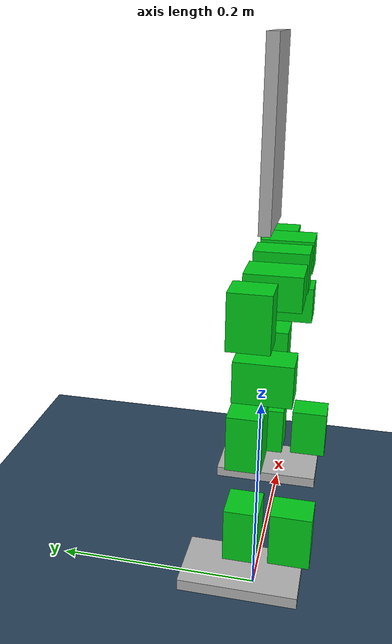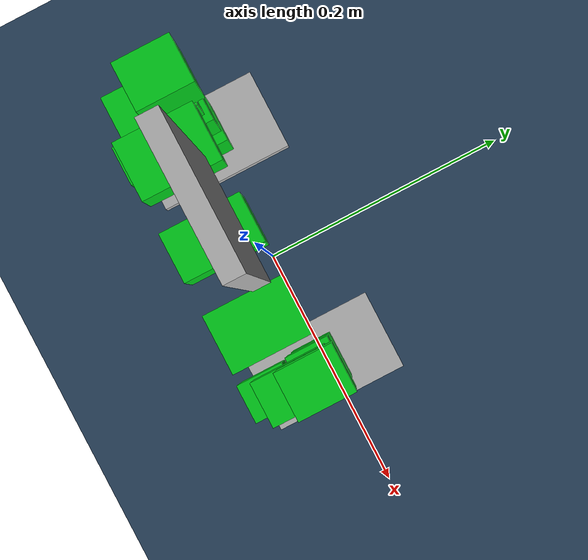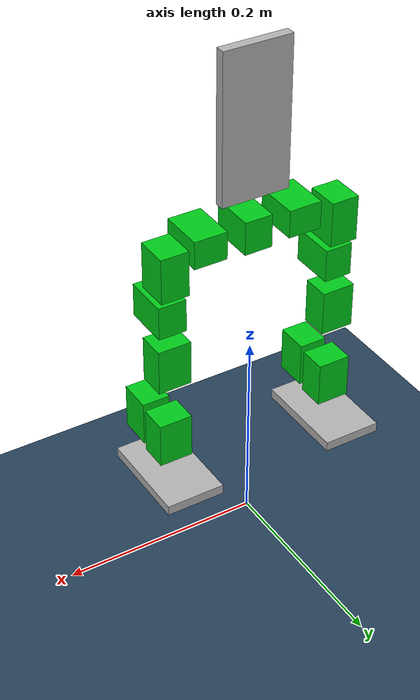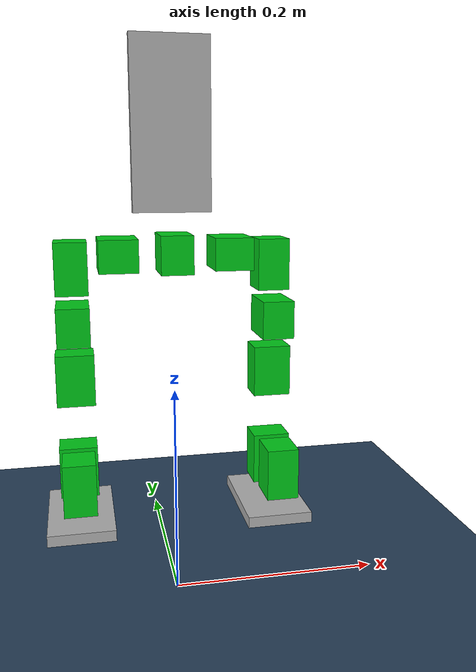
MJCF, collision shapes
<mujoco model="phonebot scene">
  <include file="phonebot_general.xml"/>

     <!-- setup scene -->
  <statistic extent="0.8" center="0 0 0.5"/>
  <visual>
    <headlight diffuse="0.6 0.6 0.6" ambient="0.3 0.3 0.3" specular="0 0 0"/>
    <rgba haze="0.15 0.25 0.35 1"/>
    <global azimuth="120" elevation="-20"/>
  </visual>

  <asset>
    <texture type="skybox" builtin="gradient" rgb1="0.3 0.5 0.7" rgb2="0 0 0" width="512" height="3072"/>
    <texture type="2d" name="groundplane" builtin="checker" mark="edge" rgb1="0.2 0.3 0.4" rgb2="0.1 0.2 0.3"
      markrgb="0.8 0.8 0.8" width="300" height="300"/>
    <material name="groundplane" texture="groundplane" texuniform="true" texrepeat="5 5" reflectance="0.2"/>
  </asset>

  <worldbody>
    <light pos="0 0 1.5" dir="0 0 -1" directional="true"/>
    <!-- Explicitly set floor sliding friction to 1.0 (MuJoCo default). -->
    <geom name="floor" size="0 0 0.05" type="plane" material="groundplane" friction="1.0"/>
  </worldbody>

  <keyframe>
    <key name="home"
      qpos="
    0 0 0.30
    1 0 0 0
    -0.44 0 0 0.785 -0.377 0 0.44 0 0 -0.785 0.377 0 0
    "
      ctrl="
    -0.44 0 0 0.785 -0.377 0 0.44 0 0 -0.785 0.377 0 0
    "/>
  </keyframe>

</mujoco>

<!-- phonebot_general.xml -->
<mujoco model="phonebot_general_6motor">
  <compiler angle="radian" balanceinertia="true" />
  <asset>
    <mesh name="motor_mesh" file="meshes/XL-430_new_coordinate_on_axis.STL" scale="0.001000 0.001000 0.001000" />
  </asset>
  <worldbody>
    <body name="base_motor_link" pos="0.000000 0.000000 0.330000" quat="1.000000 0.000000 0.000000 0.000000">
      <freejoint name="floating_base" />
      <site name="imu" pos="0.000000 0.000000 0.000000" quat="0.707107 0.000000 0.000000 0.707107" />
      <!-- Track camera (like HERMES/T1). Note: base_motor_link frame is (z up, y forward, x sideways). -->
      <camera name="track" mode="trackcom"
              pos="0.947000 1.248000 0.500000"
              xyaxes="-0.779000 0.628000 0.000000 -0.221000 -0.274000 0.936000" />
      <inertial pos="0.000000 -0.012000 0.000000" mass="0.065000" diaginertia="0.000017973854 0.000010661354 0.000016111875" />
      <geom type="mesh" mesh="motor_mesh" rgba="0.89804 0.91765 0.92941 1.0" contype="0" conaffinity="0" group="0" />
      <geom type="box" size="0.014250 0.023250 0.017000" pos="0.000000 -0.012000 0.000000" rgba="0.0 0.8 0.1 1.0" contype="0" conaffinity="0" group="1" />
      <body name="l_hip_pitch" pos="-0.050000 0.000000 0.000000" quat="0.707107 0.000000 -0.707107 0.000000">
        <inertial pos="0.000000 -0.012000 0.000000" mass="0.065000" diaginertia="0.000017973854 0.000010661354 0.000016111875" />
        <geom type="mesh" mesh="motor_mesh" rgba="0.89804 0.91765 0.92941 1.0" contype="0" conaffinity="0" group="0" />
        <geom type="box" size="0.014250 0.023250 0.017000" pos="0.000000 -0.012000 0.000000" rgba="0.0 0.8 0.1 1.0" contype="0" conaffinity="0" group="1" />
        <body name="l_hip_pitch_out" pos="0.000000 0.000000 0.000000" quat="1.000000 0.000000 0.000000 0.000000">
          <inertial pos="0.000000 0.000000 0.000000" mass="0.001000" diaginertia="0.000000016667 0.000000016667 0.000000016667" />
          <joint name="l_hip_pitch_joint" type="hinge" axis="0.000000 0.000000 1.000000" pos="0.000000 0.000000 0.000000" range="-3.14159 3.14159" stiffness="0" damping="0.01" frictionloss="0.01" armature="0.02" />
          <body name="l_hip_roll" pos="0.000000 0.000000 0.040000" quat="0.500000 -0.500000 -0.500000 -0.500000">
            <inertial pos="0.000000 -0.012000 0.000000" mass="0.065000" diaginertia="0.000017973854 0.000010661354 0.000016111875" />
            <geom type="mesh" mesh="motor_mesh" rgba="0.89804 0.91765 0.92941 1.0" contype="0" conaffinity="0" group="0" />
            <geom type="box" size="0.014250 0.023250 0.017000" pos="0.000000 -0.012000 0.000000" rgba="0.0 0.8 0.1 1.0" contype="0" conaffinity="0" group="1" />
            <body name="l_hip_roll_out" pos="0.000000 0.000000 0.000000" quat="1.000000 0.000000 0.000000 0.000000">
              <inertial pos="0.000000 0.000000 0.000000" mass="0.001000" diaginertia="0.000000016667 0.000000016667 0.000000016667" />
              <joint name="l_hip_roll_joint" type="hinge" axis="0.000000 0.000000 1.000000" pos="0.000000 0.000000 0.000000" range="-3.14159 3.14159" stiffness="0" damping="0.01" frictionloss="0.01" armature="0.02" />
              <body name="l_hip_thigh" pos="0.000000 -0.060000 0.000000" quat="0.707107 0.707107 0.000000 0.000000">
                <inertial pos="0.000000 -0.012000 0.000000" mass="0.065000" diaginertia="0.000017973854 0.000010661354 0.000016111875" />
                <geom type="mesh" mesh="motor_mesh" rgba="0.89804 0.91765 0.92941 1.0" contype="0" conaffinity="0" group="0" />
                <geom type="box" size="0.014250 0.023250 0.017000" pos="0.000000 -0.012000 0.000000" rgba="0.0 0.8 0.1 1.0" contype="0" conaffinity="0" group="1" />
                <body name="l_hip_thigh_out" pos="0.000000 0.000000 0.000000" quat="1.000000 0.000000 0.000000 0.000000">
                  <inertial pos="0.000000 0.000000 0.000000" mass="0.001000" diaginertia="0.000000016667 0.000000016667 0.000000016667" />
                  <joint name="l_hip_thigh_joint" type="hinge" axis="0.000000 0.000000 1.000000" pos="0.000000 0.000000 0.000000" range="-3.14159 3.14159" stiffness="0" damping="0.01" frictionloss="0.01" armature="0.02" />
                  <body name="l_hip_calf" pos="0.000000 0.000000 0.040000" quat="0.500000 -0.500000 0.500000 -0.500000">
                    <joint name="l_hip_calf_joint" type="hinge" axis="0.000000 0.000000 1.000000" pos="0.000000 0.000000 0.000000" range="-3.14159 3.14159" stiffness="0" damping="0.01" frictionloss="0.01" armature="0.02" />
                    <inertial pos="0.000000 -0.012000 0.000000" mass="0.065000" diaginertia="0.000017973854 0.000010661354 0.000016111875" />
                    <geom type="mesh" mesh="motor_mesh" rgba="0.89804 0.91765 0.92941 1.0" contype="0" conaffinity="0" group="0" />
                    <geom type="box" size="0.014250 0.023250 0.017000" pos="0.000000 -0.012000 0.000000" rgba="0.0 0.8 0.1 1.0" contype="0" conaffinity="0" group="1" />
                    <body name="l_hip_calf_out" pos="0.000000 0.000000 0.000000" quat="1.000000 0.000000 0.000000 0.000000">
                      <inertial pos="0.000000 0.000000 0.000000" mass="0.001000" diaginertia="0.000000016667 0.000000016667 0.000000016667" />
                      <body name="l_ankle_pitch" pos="0.000000 -0.110000 0.000000" quat="0.000000 0.000000 0.000000 1.000000">
                        <joint name="l_ankle_pitch_joint" type="hinge" axis="0.000000 0.000000 1.000000" pos="0.000000 0.000000 0.000000" range="-3.14159 3.14159" stiffness="0" damping="0.01" frictionloss="0.01" armature="0.02" />
                        <inertial pos="0.000000 -0.012000 0.000000" mass="0.065000" diaginertia="0.000017973854 0.000010661354 0.000016111875" />
                        <geom type="mesh" mesh="motor_mesh" rgba="0.89804 0.91765 0.92941 1.0" contype="0" conaffinity="0" group="0" />
                        <geom type="box" size="0.014250 0.023250 0.017000" pos="0.000000 -0.012000 0.000000" rgba="0.0 0.8 0.1 1.0" contype="0" conaffinity="0" group="1" />
                        <body name="l_ankle_pitch_out" pos="0.000000 0.000000 0.000000" quat="1.000000 0.000000 0.000000 0.000000">
                          <inertial pos="0.000000 0.000000 0.000000" mass="0.001000" diaginertia="0.000000016667 0.000000016667 0.000000016667" />
                          <body name="l_ankle_roll" pos="-0.040000 0.000000 0.000000" quat="0.707107 0.000000 0.707107 0.000000">
                            <inertial pos="0.000000 -0.012000 0.000000" mass="0.065000" diaginertia="0.000017973854 0.000010661354 0.000016111875" />
                            <geom type="mesh" mesh="motor_mesh" rgba="0.89804 0.91765 0.92941 1.0" contype="0" conaffinity="0" group="0" />
                            <geom type="box" size="0.014250 0.023250 0.017000" pos="0.000000 -0.012000 0.000000" rgba="0.0 0.8 0.1 1.0" contype="0" conaffinity="0" group="1" />
                            <body name="l_ankle_roll_out" pos="0.000000 0.000000 0.000000" quat="1.000000 0.000000 0.000000 0.000000">
                              <inertial pos="0.000000 0.000000 0.000000" mass="0.001000" diaginertia="0.000000016667 0.000000016667 0.000000016667" />
                              <joint name="l_ankle_roll_joint" type="hinge" axis="0.000000 0.000000 1.000000" pos="0.000000 0.000000 0.000000" range="-3.14159 3.14159" stiffness="0" damping="0.01" frictionloss="0.01" armature="0.02" />
                              <body name="l_end_effector" pos="0.000000 0.035000 0.040000" quat="0.500000 0.500000 -0.500000 0.500000">
                                <inertial pos="0.000000 0.000000 0.000000" mass="0.050000" diaginertia="0.000015416667 0.000042083333 0.000056666667" />
                                <geom name="left_foot" type="box" size="0.050000 0.030000 0.005000" pos="0.000000 0.000000 0.000000" rgba="0.7 0.7 0.7 1.0" contype="1" conaffinity="1" group="0" />
                                <site name="left_foot" pos="0.000000 0.000000 0.000000" quat="1.000000 0.000000 0.000000 0.000000" />
                              </body>
                            </body>
                          </body>
                        </body>
                      </body>
                    </body>
                  </body>
                </body>
              </body>
            </body>
          </body>
        </body>
      </body>
      <body name="r_hip_pitch" pos="0.050000 0.000000 0.000000" quat="0.707107 0.000000 0.707107 0.000000">
        <inertial pos="0.000000 -0.012000 0.000000" mass="0.065000" diaginertia="0.000017973854 0.000010661354 0.000016111875" />
        <geom type="mesh" mesh="motor_mesh" rgba="0.89804 0.91765 0.92941 1.0" contype="0" conaffinity="0" group="0" />
        <geom type="box" size="0.014250 0.023250 0.017000" pos="0.000000 -0.012000 0.000000" rgba="0.0 0.8 0.1 1.0" contype="0" conaffinity="0" group="1" />
        <body name="r_hip_pitch_out" pos="0.000000 0.000000 0.000000" quat="1.000000 0.000000 0.000000 0.000000">
          <inertial pos="0.000000 0.000000 0.000000" mass="0.001000" diaginertia="0.000000016667 0.000000016667 0.000000016667" />
          <joint name="r_hip_pitch_joint" type="hinge" axis="0.000000 0.000000 1.000000" pos="0.000000 0.000000 0.000000" range="-3.14159 3.14159" stiffness="0" damping="0.01" frictionloss="0.01" armature="0.02" />
          <body name="r_hip_roll" pos="-0.000000 0.000000 0.040000" quat="0.500000 -0.500000 0.500000 0.500000">
            <inertial pos="0.000000 -0.012000 0.000000" mass="0.065000" diaginertia="0.000017973854 0.000010661354 0.000016111875" />
            <geom type="mesh" mesh="motor_mesh" rgba="0.89804 0.91765 0.92941 1.0" contype="0" conaffinity="0" group="0" />
            <geom type="box" size="0.014250 0.023250 0.017000" pos="0.000000 -0.012000 0.000000" rgba="0.0 0.8 0.1 1.0" contype="0" conaffinity="0" group="1" />
            <body name="r_hip_roll_out" pos="0.000000 0.000000 0.000000" quat="1.000000 0.000000 0.000000 0.000000">
              <inertial pos="0.000000 0.000000 0.000000" mass="0.001000" diaginertia="0.000000016667 0.000000016667 0.000000016667" />
              <joint name="r_hip_roll_joint" type="hinge" axis="0.000000 0.000000 1.000000" pos="0.000000 0.000000 0.000000" range="-3.14159 3.14159" stiffness="0" damping="0.01" frictionloss="0.01" armature="0.02" />
              <body name="r_hip_thigh" pos="-0.000000 -0.060000 0.000000" quat="0.707107 0.707107 0.000000 0.000000">
                <inertial pos="0.000000 -0.012000 0.000000" mass="0.065000" diaginertia="0.000017973854 0.000010661354 0.000016111875" />
                <geom type="mesh" mesh="motor_mesh" rgba="0.89804 0.91765 0.92941 1.0" contype="0" conaffinity="0" group="0" />
                <geom type="box" size="0.014250 0.023250 0.017000" pos="0.000000 -0.012000 0.000000" rgba="0.0 0.8 0.1 1.0" contype="0" conaffinity="0" group="1" />
                <body name="r_hip_thigh_out" pos="0.000000 0.000000 0.000000" quat="1.000000 0.000000 0.000000 0.000000">
                  <inertial pos="0.000000 0.000000 0.000000" mass="0.001000" diaginertia="0.000000016667 0.000000016667 0.000000016667" />
                  <joint name="r_hip_thigh_joint" type="hinge" axis="0.000000 0.000000 1.000000" pos="0.000000 0.000000 0.000000" range="-3.14159 3.14159" stiffness="0" damping="0.01" frictionloss="0.01" armature="0.02" />
                  <body name="r_hip_calf" pos="-0.000000 0.000000 0.040000" quat="0.500000 -0.500000 -0.500000 0.500000">
                    <joint name="r_hip_calf_joint" type="hinge" axis="0.000000 0.000000 1.000000" pos="0.000000 0.000000 0.000000" range="-3.14159 3.14159" stiffness="0" damping="0.01" frictionloss="0.01" armature="0.02" />
                    <inertial pos="0.000000 -0.012000 0.000000" mass="0.065000" diaginertia="0.000017973854 0.000010661354 0.000016111875" />
                    <geom type="mesh" mesh="motor_mesh" rgba="0.89804 0.91765 0.92941 1.0" contype="0" conaffinity="0" group="0" />
                    <geom type="box" size="0.014250 0.023250 0.017000" pos="0.000000 -0.012000 0.000000" rgba="0.0 0.8 0.1 1.0" contype="0" conaffinity="0" group="1" />
                    <body name="r_hip_calf_out" pos="0.000000 0.000000 0.000000" quat="1.000000 0.000000 0.000000 0.000000">
                      <inertial pos="0.000000 0.000000 0.000000" mass="0.001000" diaginertia="0.000000016667 0.000000016667 0.000000016667" />
                      <body name="r_ankle_pitch" pos="-0.000000 -0.110000 0.000000" quat="-0.000000 0.000000 0.000000 1.000000">
                        <joint name="r_ankle_pitch_joint" type="hinge" axis="0.000000 0.000000 1.000000" pos="0.000000 0.000000 0.000000" range="-3.14159 3.14159" stiffness="0" damping="0.01" frictionloss="0.01" armature="0.02" />
                        <inertial pos="0.000000 -0.012000 0.000000" mass="0.065000" diaginertia="0.000017973854 0.000010661354 0.000016111875" />
                        <geom type="mesh" mesh="motor_mesh" rgba="0.89804 0.91765 0.92941 1.0" contype="0" conaffinity="0" group="0" />
                        <geom type="box" size="0.014250 0.023250 0.017000" pos="0.000000 -0.012000 0.000000" rgba="0.0 0.8 0.1 1.0" contype="0" conaffinity="0" group="1" />
                        <body name="r_ankle_pitch_out" pos="0.000000 0.000000 0.000000" quat="1.000000 0.000000 0.000000 0.000000">
                          <inertial pos="0.000000 0.000000 0.000000" mass="0.001000" diaginertia="0.000000016667 0.000000016667 0.000000016667" />
                          <body name="r_ankle_roll" pos="0.040000 0.000000 0.000000" quat="0.707107 0.000000 -0.707107 0.000000">
                            <inertial pos="0.000000 -0.012000 0.000000" mass="0.065000" diaginertia="0.000017973854 0.000010661354 0.000016111875" />
                            <geom type="mesh" mesh="motor_mesh" rgba="0.89804 0.91765 0.92941 1.0" contype="0" conaffinity="0" group="0" />
                            <geom type="box" size="0.014250 0.023250 0.017000" pos="0.000000 -0.012000 0.000000" rgba="0.0 0.8 0.1 1.0" contype="0" conaffinity="0" group="1" />
                            <body name="r_ankle_roll_out" pos="0.000000 0.000000 0.000000" quat="1.000000 0.000000 0.000000 0.000000">
                              <inertial pos="0.000000 0.000000 0.000000" mass="0.001000" diaginertia="0.000000016667 0.000000016667 0.000000016667" />
                              <joint name="r_ankle_roll_joint" type="hinge" axis="0.000000 0.000000 1.000000" pos="0.000000 0.000000 0.000000" range="-3.14159 3.14159" stiffness="0" damping="0.01" frictionloss="0.01" armature="0.02" />
                              <body name="r_end_effector" pos="-0.000000 0.035000 0.040000" quat="0.500000 0.500000 0.500000 -0.500000">
                                <inertial pos="0.000000 0.000000 0.000000" mass="0.050000" diaginertia="0.000015416667 0.000042083333 0.000056666667" />
                                <geom name="right_foot" type="box" size="0.050000 0.030000 0.005000" pos="0.000000 0.000000 0.000000" rgba="0.7 0.7 0.7 1.0" contype="1" conaffinity="1" group="0" />
                                <site name="right_foot" pos="0.000000 0.000000 0.000000" quat="1.000000 0.000000 0.000000 0.000000" />
                              </body>
                            </body>
                          </body>
                        </body>
                      </body>
                    </body>
                  </body>
                </body>
              </body>
            </body>
          </body>
        </body>
      </body>
      <body name="trunk_link" pos="0.000000 0.000000 0.110000" quat="1.000000 0.000000 0.000000 0.000000">
        <joint name="base_to_trunk" type="hinge" axis="0.000000 0.000000 1.000000" range="-3.14159 3.14159" stiffness="0" damping="0.01" frictionloss="0.01" armature="0.02" />
        <inertial pos="0.000000 0.000000 0.000000" mass="0.300000" diaginertia="0.000565000000 0.000685000000 0.000125000000" />
        <geom type="box" size="0.035000 0.005000 0.075000" pos="0.000000 0.000000 0.000000" rgba="0.7 0.7 0.7 1.0" contype="0" conaffinity="0" group="0" />
      </body>
    </body>
  </worldbody>
  <actuator>
    <position name="l_hip_pitch" joint="l_hip_pitch_joint" kp="5" kv="0" ctrlrange="-3.14159 3.14159" />
    <position name="l_hip_roll" joint="l_hip_roll_joint" kp="5" kv="0" ctrlrange="-3.14159 3.14159" />
    <position name="l_hip_thigh" joint="l_hip_thigh_joint" kp="5" kv="0" ctrlrange="-3.14159 3.14159" />
    <position name="l_hip_calf" joint="l_hip_calf_joint" kp="5" kv="0" ctrlrange="-3.14159 3.14159" />
    <position name="l_ankle_pitch" joint="l_ankle_pitch_joint" kp="5" kv="0" ctrlrange="-3.14159 3.14159" />
    <position name="l_ankle_roll" joint="l_ankle_roll_joint" kp="5" kv="0" ctrlrange="-3.14159 3.14159" />
    <position name="r_hip_pitch" joint="r_hip_pitch_joint" kp="5" kv="0" ctrlrange="-3.14159 3.14159" />
    <position name="r_hip_roll" joint="r_hip_roll_joint" kp="5" kv="0" ctrlrange="-3.14159 3.14159" />
    <position name="r_hip_thigh" joint="r_hip_thigh_joint" kp="5" kv="0" ctrlrange="-3.14159 3.14159" />
    <position name="r_hip_calf" joint="r_hip_calf_joint" kp="5" kv="0" ctrlrange="-3.14159 3.14159" />
    <position name="r_ankle_pitch" joint="r_ankle_pitch_joint" kp="5" kv="0" ctrlrange="-3.14159 3.14159" />
    <position name="r_ankle_roll" joint="r_ankle_roll_joint" kp="5" kv="0" ctrlrange="-3.14159 3.14159" />
    <position name="base_to_trunk" joint="base_to_trunk" kp="5" kv="0" ctrlrange="-3.14159 3.14159" />
  </actuator>
  <sensor>
    <framepos name="position" objtype="site" objname="imu" noise="0.001" />
    <velocimeter name="linear-velocity" site="imu" noise="0.001" cutoff="30" />
    <framequat name="orientation" objtype="site" objname="imu" noise="0.001" />
    <gyro name="angular-velocity" site="imu" noise="0.005" cutoff="34.9" />
    <accelerometer name="linear-acceleration" site="imu" noise="0.005" cutoff="157" />
    <magnetometer name="magnetometer" site="imu" />
    <gyro site="imu" name="gyro" />
    <velocimeter site="imu" name="local_linvel" />
    <accelerometer site="imu" name="accelerometer" />
    <framezaxis objtype="site" objname="imu" name="upvector" />
    <framexaxis objtype="site" objname="imu" name="forwardvector" />
    <framelinvel objtype="site" objname="imu" name="global_linvel" />
    <frameangvel objtype="site" objname="imu" name="global_angvel" />
    <framelinvel objtype="site" objname="left_foot" name="left_foot_global_linvel" />
    <framelinvel objtype="site" objname="right_foot" name="right_foot_global_linvel" />
    <framepos objtype="site" objname="left_foot" name="left_foot_pos" />
    <framepos objtype="site" objname="right_foot" name="right_foot_pos" />
    <jointpos name="l_hip_pitch_joint_pos" joint="l_hip_pitch_joint" />
    <jointvel name="l_hip_pitch_joint_vel" joint="l_hip_pitch_joint" />
    <jointactuatorfrc name="l_hip_pitch_joint_frc" joint="l_hip_pitch_joint" />
    <jointpos name="r_hip_pitch_joint_pos" joint="r_hip_pitch_joint" />
    <jointvel name="r_hip_pitch_joint_vel" joint="r_hip_pitch_joint" />
    <jointactuatorfrc name="r_hip_pitch_joint_frc" joint="r_hip_pitch_joint" />
    <jointpos name="l_hip_roll_joint_pos" joint="l_hip_roll_joint" />
    <jointvel name="l_hip_roll_joint_vel" joint="l_hip_roll_joint" />
    <jointactuatorfrc name="l_hip_roll_joint_frc" joint="l_hip_roll_joint" />
    <jointpos name="r_hip_roll_joint_pos" joint="r_hip_roll_joint" />
    <jointvel name="r_hip_roll_joint_vel" joint="r_hip_roll_joint" />
    <jointactuatorfrc name="r_hip_roll_joint_frc" joint="r_hip_roll_joint" />
    <jointpos name="l_hip_thigh_joint_pos" joint="l_hip_thigh_joint" />
    <jointvel name="l_hip_thigh_joint_vel" joint="l_hip_thigh_joint" />
    <jointactuatorfrc name="l_hip_thigh_joint_frc" joint="l_hip_thigh_joint" />
    <jointpos name="r_hip_thigh_joint_pos" joint="r_hip_thigh_joint" />
    <jointvel name="r_hip_thigh_joint_vel" joint="r_hip_thigh_joint" />
    <jointactuatorfrc name="r_hip_thigh_joint_frc" joint="r_hip_thigh_joint" />
    <jointpos name="l_hip_calf_joint_pos" joint="l_hip_calf_joint" />
    <jointvel name="l_hip_calf_joint_vel" joint="l_hip_calf_joint" />
    <jointactuatorfrc name="l_hip_calf_joint_frc" joint="l_hip_calf_joint" />
    <jointpos name="r_hip_calf_joint_pos" joint="r_hip_calf_joint" />
    <jointvel name="r_hip_calf_joint_vel" joint="r_hip_calf_joint" />
    <jointactuatorfrc name="r_hip_calf_joint_frc" joint="r_hip_calf_joint" />
    <jointpos name="l_ankle_pitch_joint_pos" joint="l_ankle_pitch_joint" />
    <jointvel name="l_ankle_pitch_joint_vel" joint="l_ankle_pitch_joint" />
    <jointactuatorfrc name="l_ankle_pitch_joint_frc" joint="l_ankle_pitch_joint" />
    <jointpos name="r_ankle_pitch_joint_pos" joint="r_ankle_pitch_joint" />
    <jointvel name="r_ankle_pitch_joint_vel" joint="r_ankle_pitch_joint" />
    <jointactuatorfrc name="r_ankle_pitch_joint_frc" joint="r_ankle_pitch_joint" />
    <jointpos name="l_ankle_roll_joint_pos" joint="l_ankle_roll_joint" />
    <jointvel name="l_ankle_roll_joint_vel" joint="l_ankle_roll_joint" />
    <jointactuatorfrc name="l_ankle_roll_joint_frc" joint="l_ankle_roll_joint" />
    <jointpos name="r_ankle_roll_joint_pos" joint="r_ankle_roll_joint" />
    <jointvel name="r_ankle_roll_joint_vel" joint="r_ankle_roll_joint" />
    <jointactuatorfrc name="r_ankle_roll_joint_frc" joint="r_ankle_roll_joint" />
    <jointpos name="base_to_trunk_pos" joint="base_to_trunk" />
    <jointvel name="base_to_trunk_vel" joint="base_to_trunk" />
    <jointactuatorfrc name="base_to_trunk_frc" joint="base_to_trunk" />
  </sensor>
</mujoco>
